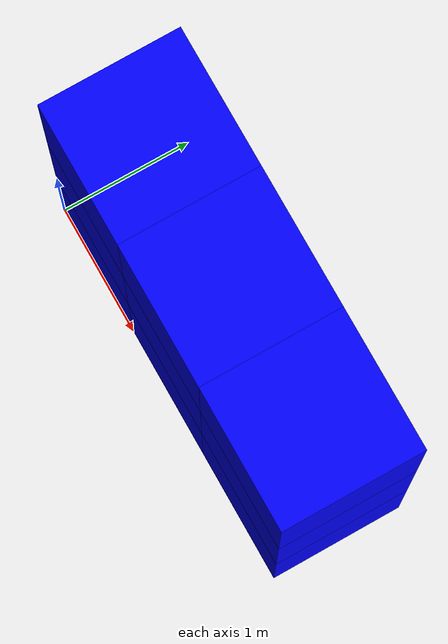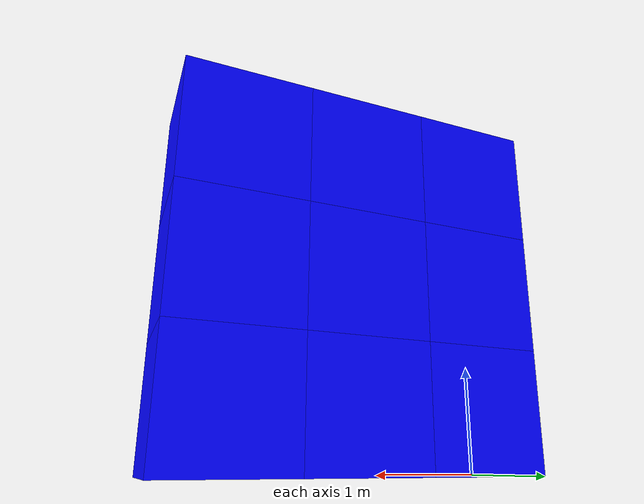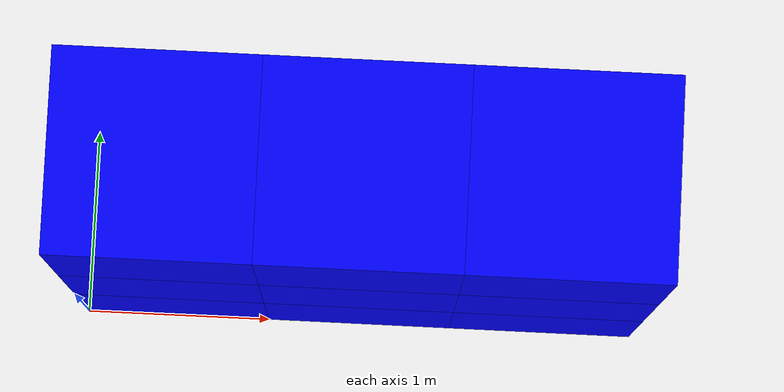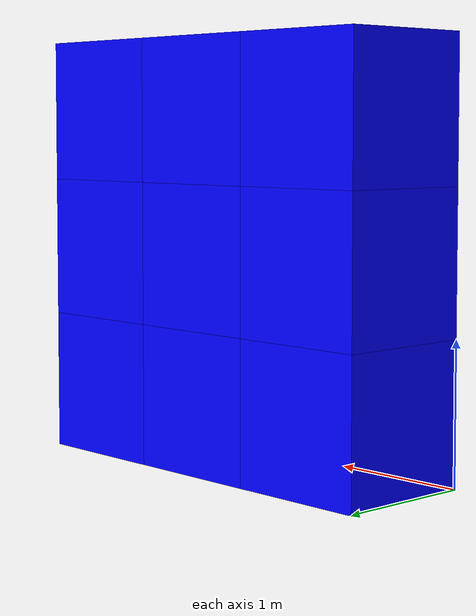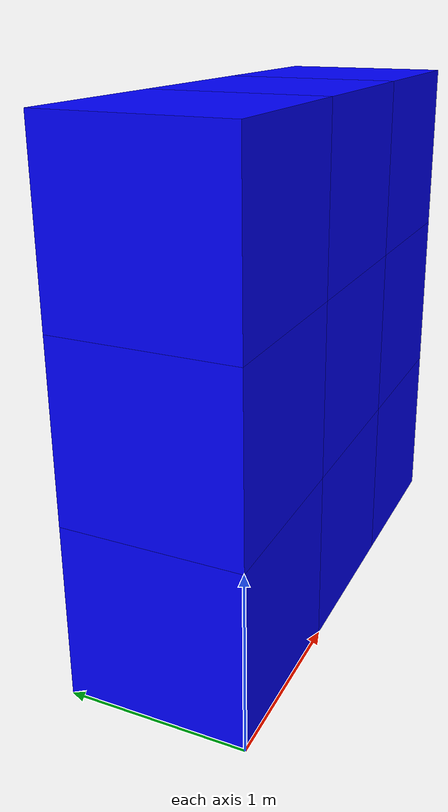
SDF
<?xml version='1.0'?>
<sdf version='1.6'>
<model name='slam_wall'>
<static>true</static>
<include>
<uri>../models/slam_cube_blue</uri>
<pose>0 0 0 0 0 0</pose>
</include>
<include>
<uri>../models/slam_cube_blue</uri>
<pose>0 0 1 0 0 0</pose>
</include>
<include>
<uri>../models/slam_cube_blue</uri>
<pose>0 0 2 0 0 0</pose>
</include>
<include>
<uri>../models/slam_cube_blue</uri>
<pose>1 0 0 0 0 0</pose>
</include>
<include>
<uri>../models/slam_cube_blue</uri>
<pose>1 0 1 0 0 0</pose>
</include>
<include>
<uri>../models/slam_cube_blue</uri>
<pose>1 0 2 0 0 0</pose>
</include>
<include>
<uri>../models/slam_cube_blue</uri>
<pose>2 0 0 0 0 0</pose>
</include>
<include>
<uri>../models/slam_cube_blue</uri>
<pose>2 0 1 0 0 0</pose>
</include>
<include>
<uri>../models/slam_cube_blue</uri>
<pose>2 0 2 0 0 0</pose>
</include>
</model>
</sdf>

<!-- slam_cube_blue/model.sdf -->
<sdf version="1.5">
  <model name="cube">
    <static>true</static>
    <link name="link">
      <pose>0.5 0.5 0.5 0 0 0</pose>
      <collision name="collision">
        <geometry>
          <box>
            <size>0 0 0</size>
          </box>
        </geometry>
      </collision>
      <visual name="visual">
        <geometry>
          <box>
            <size>1 1 1</size>
          </box>
        </geometry>
        <material>
          <ambient>0 0 1 1</ambient>
          <diffuse>0 0 1 1</diffuse>
        </material>
      </visual>
    </link>
  </model>
</sdf>
